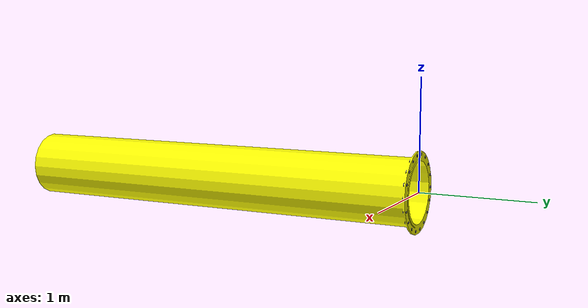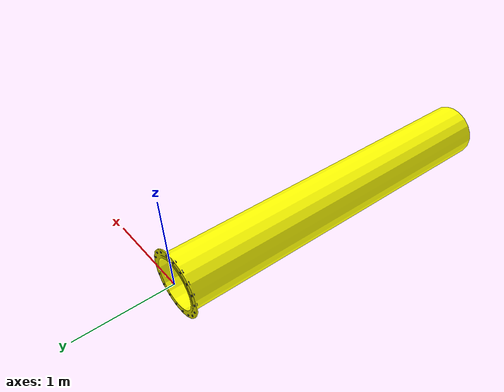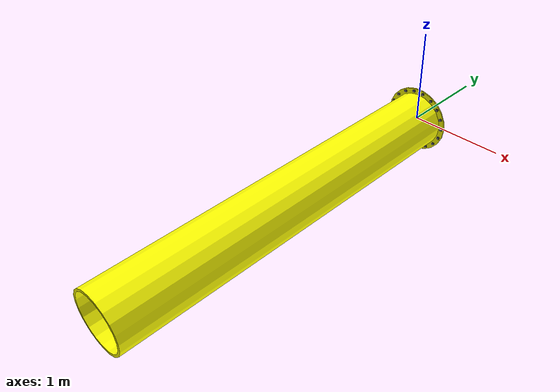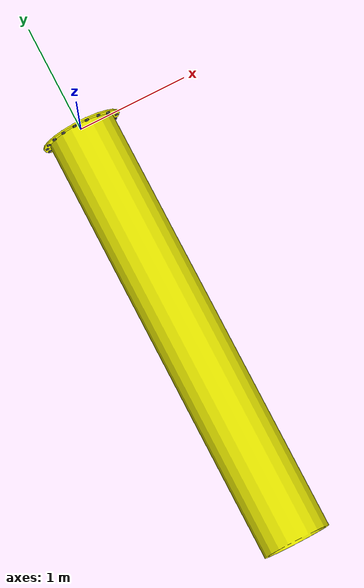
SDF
<?xml version="1.0" ?>
<!-- Copyright (c) TODO
Based on https://github.com/uuvsimulator/uuv_simulator/tree/master/uuv_gazebo_worlds
-->
<sdf version="1.5">
  <model name="clipped_segment_v2">
    <static>true</static>

    <link name="link">
      <collision name="collision">
        <pose>0 0 0 0 0 0</pose>
        <geometry>
          <mesh>
            <uri>model://pipelines/small/segments/clipped_segment_v2/model.dae</uri>
            <scale>1.0 1.0 1.0</scale>
          </mesh>
        </geometry>
      </collision>

      <visual name="visual">
        <cast_shadows>true</cast_shadows>
        <pose>0 0 0 0 0 0</pose>
        <geometry>
          <mesh>
            <uri>model://pipelines/small/segments/clipped_segment_v2/model.dae</uri>
            <scale>1.0 1.0 1.0</scale>
          </mesh>
        </geometry>
      </visual>
    </link>

  </model>
</sdf>
